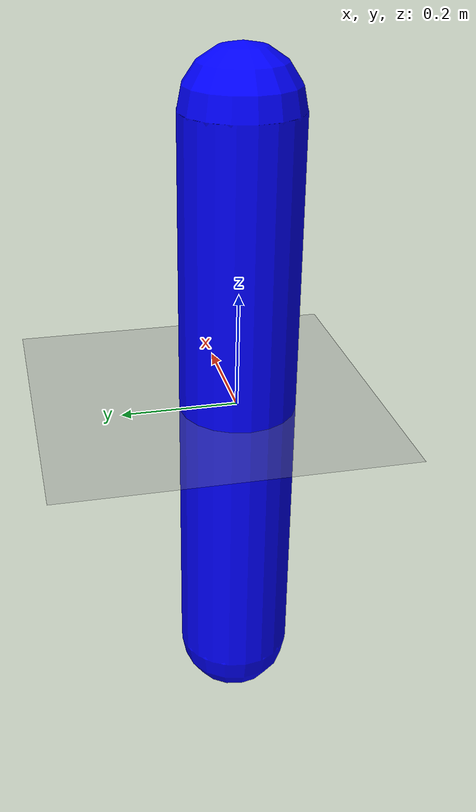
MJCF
<mujoco model="capsule_example">
    <compiler angle="radian" coordinate="local"/>
    <option timestep="0.002" gravity="0 0 -9.81"/>

    <!-- Materials -->
    <asset>
        <texture name="ground_tex" type="2d" builtin="checker" width="512" height="512" rgb1="0.8 0.8 0.8" rgb2="0.2 0.2 0.2"/>
        <material name="ground_mat" texture="ground_tex" />
        <material name="capsule_mat" rgba="0 0 1 1"/>
    </asset>

    <!-- Worldbody -->
    <worldbody>
        <!-- Ground plane -->
        <geom name="ground" type="plane" pos="0 0 0" size="5 5 0.1" material="ground_mat"/>

        <!-- Capsule at origin, aligned with z-axis -->
        <geom name="capsule" type="capsule" pos="0 0 0" size="0.1 0.5" material="capsule_mat"/>
    </worldbody>

    <!-- Actuators (empty for static example) -->
    <actuator/>
</mujoco>
